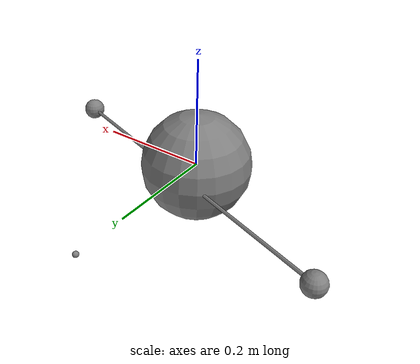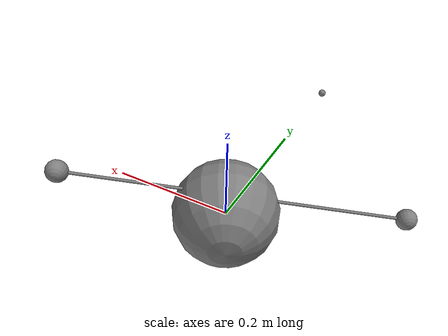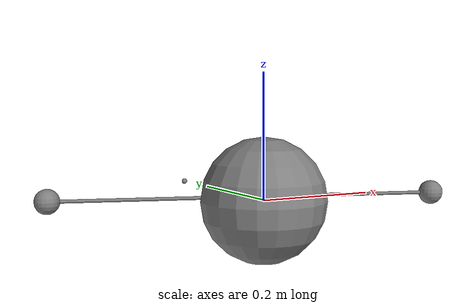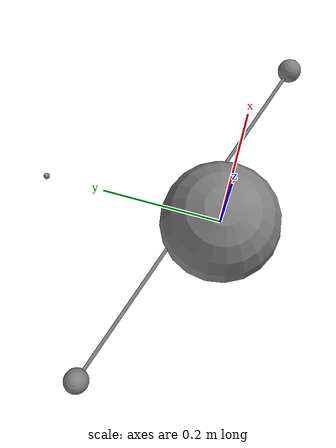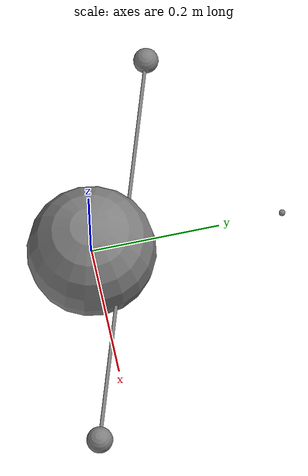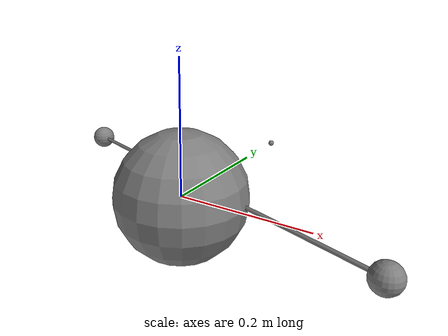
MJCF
<mujoco>
  <worldbody>
    <body name="b1" pos="-0.3 0.15 0">
      <joint name="j1" type="hinge" axis="0 0 1"/>
      <geom type="sphere" size="0.02"/>
      <site name="origin" pos="0 0 0"/>
    </body>
    <body name="wrap_body" pos="0 0 0">
      <geom name="wrap_sphere" type="sphere" size="0.1"/>
      <site name="side_hint" pos="0 0.3 0"/>
    </body>
    <body name="b2" pos="0.3 -0.05 0">
      <joint name="j2" type="hinge" axis="0 0 1"/>
      <geom type="sphere" size="0.02"/>
      <site name="insertion" pos="0 0 0"/>
    </body>
  </worldbody>
  <tendon>
    <spatial name="t_side">
      <site site="origin"/>
      <geom geom="wrap_sphere" sidesite="side_hint"/>
      <site site="insertion"/>
    </spatial>
  </tendon>
</mujoco>
